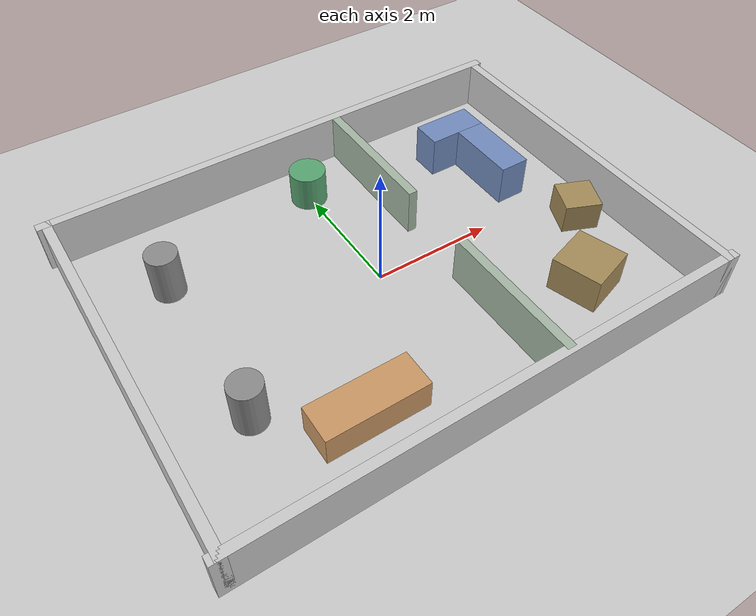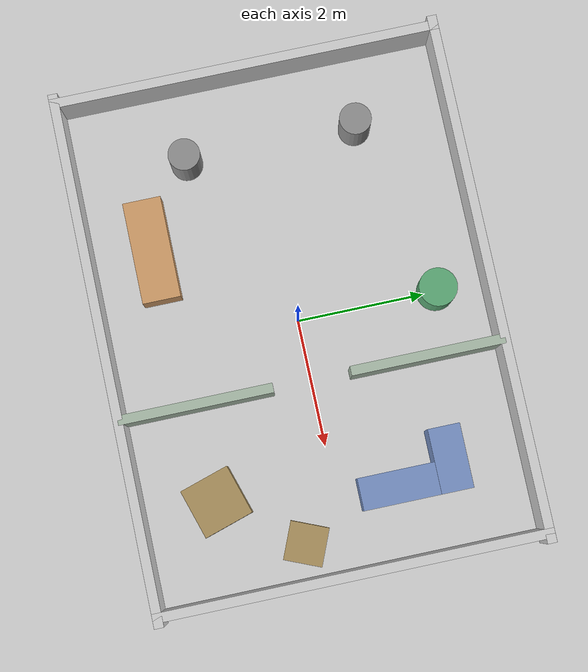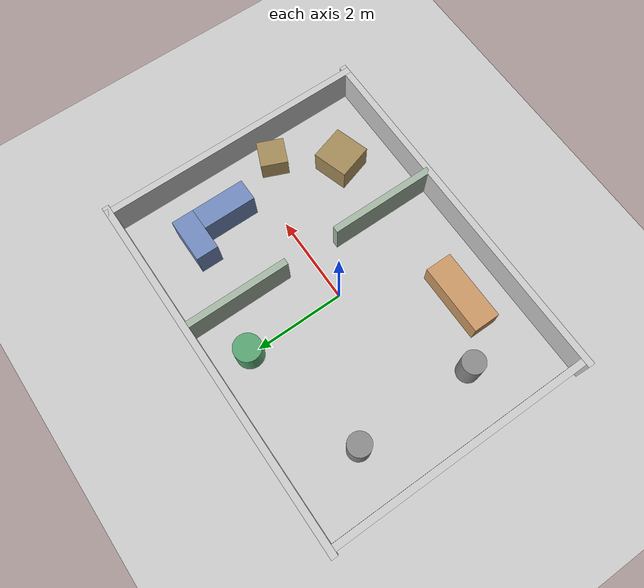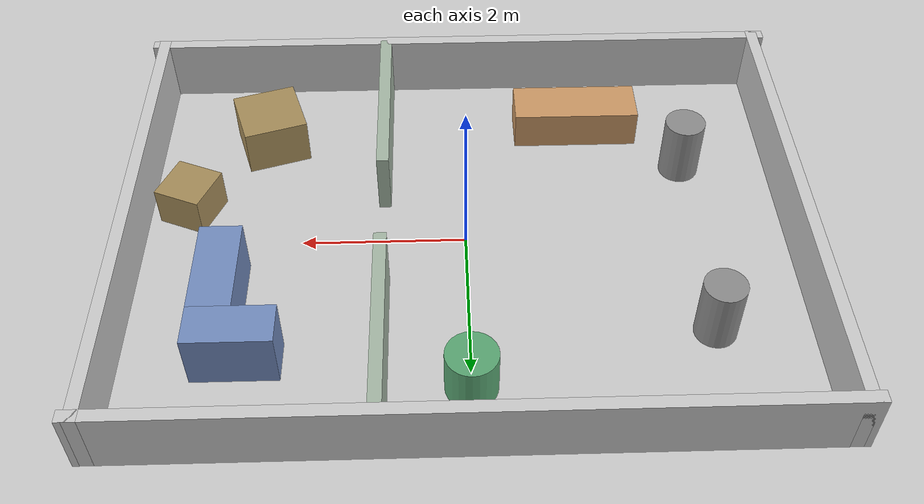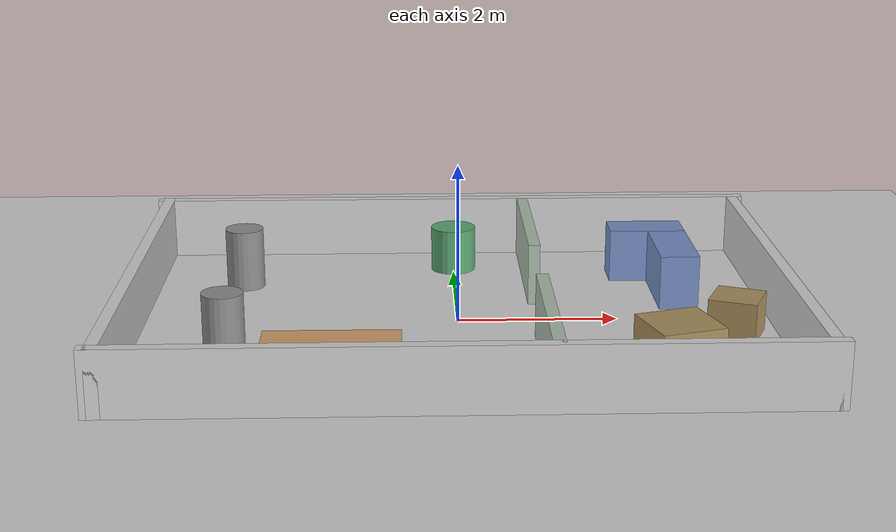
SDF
<?xml version="1.0" ?>
<sdf version="1.6">
  <world name="xzy_lab">

    <!-- 光照与地面 -->
    <include>
      <uri>model://sun</uri>
    </include>
    <include>
      <uri>model://ground_plane</uri>
    </include>
    <scene>
      <ambient>0.6 0.6 0.6 1</ambient>
      <background>0.70 0.75 0.80 1</background>
      <shadows>true</shadows>
    </scene>

    <!-- ================= 外墙 ================= -->
    <model name="wall_south">
      <static>true</static>
      <pose>0 -3.0 0.4 0 0 0</pose>
      <link name="link">
        <collision name="collision">
          <geometry><box><size>8.3 0.15 0.8</size></box></geometry>
        </collision>
        <visual name="visual">
          <geometry><box><size>8.3 0.15 0.8</size></box></geometry>
          <material><ambient>0.7 0.7 0.7 1</ambient><diffuse>0.8 0.8 0.8 1</diffuse></material>
        </visual>
      </link>
    </model>

    <model name="wall_north">
      <static>true</static>
      <pose>0 3.0 0.4 0 0 0</pose>
      <link name="link">
        <collision name="collision">
          <geometry><box><size>8.3 0.15 0.8</size></box></geometry>
        </collision>
        <visual name="visual">
          <geometry><box><size>8.3 0.15 0.8</size></box></geometry>
          <material><ambient>0.7 0.7 0.7 1</ambient><diffuse>0.8 0.8 0.8 1</diffuse></material>
        </visual>
      </link>
    </model>

    <model name="wall_west">
      <static>true</static>
      <pose>-4.0 0 0.4 0 0 0</pose>
      <link name="link">
        <collision name="collision">
          <geometry><box><size>0.15 6.15 0.8</size></box></geometry>
        </collision>
        <visual name="visual">
          <geometry><box><size>0.15 6.15 0.8</size></box></geometry>
          <material><ambient>0.7 0.7 0.7 1</ambient><diffuse>0.8 0.8 0.8 1</diffuse></material>
        </visual>
      </link>
    </model>

    <model name="wall_east">
      <static>true</static>
      <pose>4.0 0 0.4 0 0 0</pose>
      <link name="link">
        <collision name="collision">
          <geometry><box><size>0.15 6.15 0.8</size></box></geometry>
        </collision>
        <visual name="visual">
          <geometry><box><size>0.15 6.15 0.8</size></box></geometry>
          <material><ambient>0.7 0.7 0.7 1</ambient><diffuse>0.8 0.8 0.8 1</diffuse></material>
        </visual>
      </link>
    </model>

    <!-- ============ 隔断墙（x=1.0，中间留 1.2 m 门洞） ============ -->
    <model name="divider_south">
      <static>true</static>
      <pose>1.0 -1.8 0.4 0 0 0</pose>
      <link name="link">
        <collision name="collision">
          <geometry><box><size>0.15 2.4 0.8</size></box></geometry>
        </collision>
        <visual name="visual">
          <geometry><box><size>0.15 2.4 0.8</size></box></geometry>
          <material><ambient>0.6 0.65 0.6 1</ambient><diffuse>0.65 0.72 0.65 1</diffuse></material>
        </visual>
      </link>
    </model>

    <model name="divider_north">
      <static>true</static>
      <pose>1.0 1.8 0.4 0 0 0</pose>
      <link name="link">
        <collision name="collision">
          <geometry><box><size>0.15 2.4 0.8</size></box></geometry>
        </collision>
        <visual name="visual">
          <geometry><box><size>0.15 2.4 0.8</size></box></geometry>
          <material><ambient>0.6 0.65 0.6 1</ambient><diffuse>0.65 0.72 0.65 1</diffuse></material>
        </visual>
      </link>
    </model>

    <!-- ================= 内部障碍（不对称摆放） ================= -->
    <!-- 实验台（西侧长条，出生点前方偏左，激光近距可见） -->
    <model name="bench_west">
      <static>true</static>
      <pose>-1.5 -2.0 0.25 0 0 0</pose>
      <link name="link">
        <collision name="collision">
          <geometry><box><size>1.6 0.6 0.5</size></box></geometry>
        </collision>
        <visual name="visual">
          <geometry><box><size>1.6 0.6 0.5</size></box></geometry>
          <material><ambient>0.75 0.55 0.35 1</ambient><diffuse>0.80 0.60 0.40 1</diffuse></material>
        </visual>
      </link>
    </model>

    <!-- 储物柜 1（东侧北端） -->
    <model name="cabinet_1">
      <static>true</static>
      <pose>2.6 1.8 0.35 0 0 0</pose>
      <link name="link">
        <collision name="collision">
          <geometry><box><size>1.0 0.5 0.7</size></box></geometry>
        </collision>
        <visual name="visual">
          <geometry><box><size>1.0 0.5 0.7</size></box></geometry>
          <material><ambient>0.4 0.5 0.7 1</ambient><diffuse>0.45 0.55 0.75 1</diffuse></material>
        </visual>
      </link>
    </model>

    <!-- 储物柜 2（与 1 成直角，制造 L 形特征） -->
    <model name="cabinet_2">
      <static>true</static>
      <pose>2.85 0.95 0.35 0 0 1.5708</pose>
      <link name="link">
        <collision name="collision">
          <geometry><box><size>1.2 0.5 0.7</size></box></geometry>
        </collision>
        <visual name="visual">
          <geometry><box><size>1.2 0.5 0.7</size></box></geometry>
          <material><ambient>0.4 0.5 0.7 1</ambient><diffuse>0.45 0.55 0.75 1</diffuse></material>
        </visual>
      </link>
    </model>

    <!-- 货箱 1（东南侧，带一点旋转） -->
    <model name="crate_1">
      <static>true</static>
      <pose>2.5 -1.8 0.3 0 0 0.3</pose>
      <link name="link">
        <collision name="collision">
          <geometry><box><size>0.8 0.8 0.6</size></box></geometry>
        </collision>
        <visual name="visual">
          <geometry><box><size>0.8 0.8 0.6</size></box></geometry>
          <material><ambient>0.6 0.5 0.3 1</ambient><diffuse>0.65 0.55 0.35 1</diffuse></material>
        </visual>
      </link>
    </model>

    <!-- 货箱 2（东南角，小一号、反向旋转） -->
    <model name="crate_2">
      <static>true</static>
      <pose>3.4 -0.6 0.25 0 0 -0.4</pose>
      <link name="link">
        <collision name="collision">
          <geometry><box><size>0.6 0.6 0.5</size></box></geometry>
        </collision>
        <visual name="visual">
          <geometry><box><size>0.6 0.6 0.5</size></box></geometry>
          <material><ambient>0.6 0.5 0.3 1</ambient><diffuse>0.65 0.55 0.35 1</diffuse></material>
        </visual>
      </link>
    </model>

    <!-- 立柱 1（西侧，出生点左前方约 2.1 m） -->
    <model name="pillar_1">
      <static>true</static>
      <pose>-2.8 1.5 0.4 0 0 0</pose>
      <link name="link">
        <collision name="collision">
          <geometry><cylinder><radius>0.25</radius><length>0.8</length></cylinder></geometry>
        </collision>
        <visual name="visual">
          <geometry><cylinder><radius>0.25</radius><length>0.8</length></cylinder></geometry>
          <material><ambient>0.5 0.5 0.5 1</ambient><diffuse>0.55 0.55 0.55 1</diffuse></material>
        </visual>
      </link>
    </model>

    <!-- 立柱 2（西侧，与 1 的间距刻意与另一边不同，避免对称） -->
    <model name="pillar_2">
      <static>true</static>
      <pose>-2.8 -1.2 0.4 0 0 0</pose>
      <link name="link">
        <collision name="collision">
          <geometry><cylinder><radius>0.25</radius><length>0.8</length></cylinder></geometry>
        </collision>
        <visual name="visual">
          <geometry><cylinder><radius>0.25</radius><length>0.8</length></cylinder></geometry>
          <material><ambient>0.5 0.5 0.5 1</ambient><diffuse>0.55 0.55 0.55 1</diffuse></material>
        </visual>
      </link>
    </model>

    <!-- 垃圾桶（北侧中部，半径更大，增加特征差异） -->
    <model name="bin_north">
      <static>true</static>
      <pose>0.0 2.2 0.3 0 0 0</pose>
      <link name="link">
        <collision name="collision">
          <geometry><cylinder><radius>0.30</radius><length>0.6</length></cylinder></geometry>
        </collision>
        <visual name="visual">
          <geometry><cylinder><radius>0.30</radius><length>0.6</length></cylinder></geometry>
          <material><ambient>0.3 0.6 0.4 1</ambient><diffuse>0.35 0.65 0.45 1</diffuse></material>
        </visual>
      </link>
    </model>

  </world>
</sdf>
